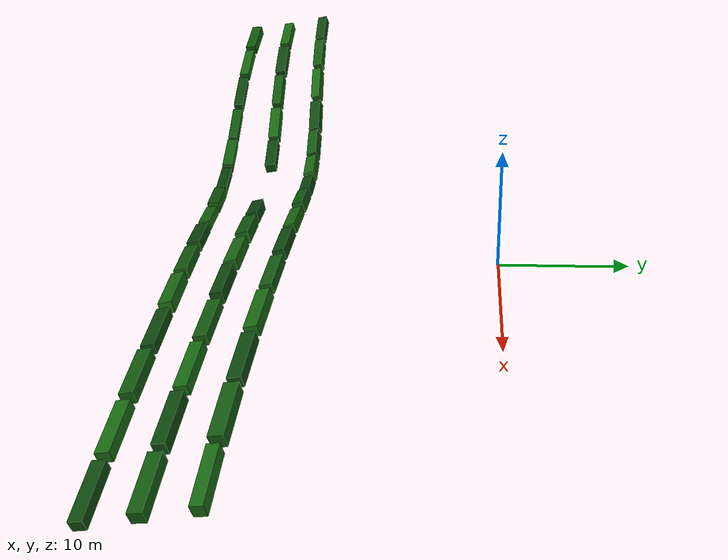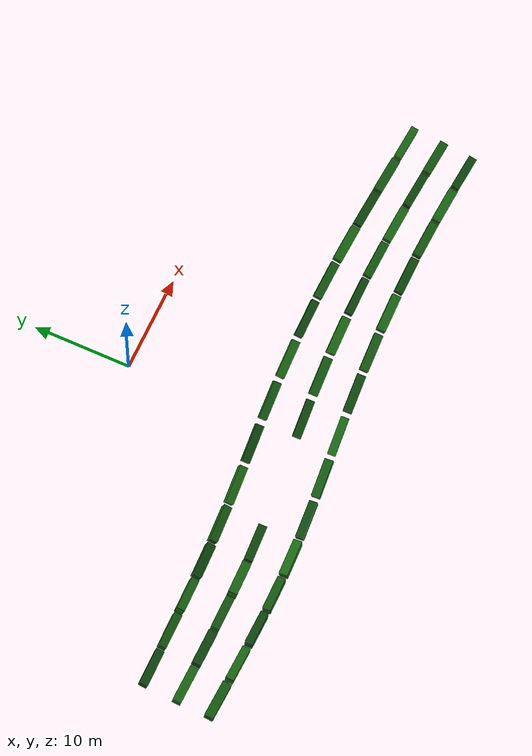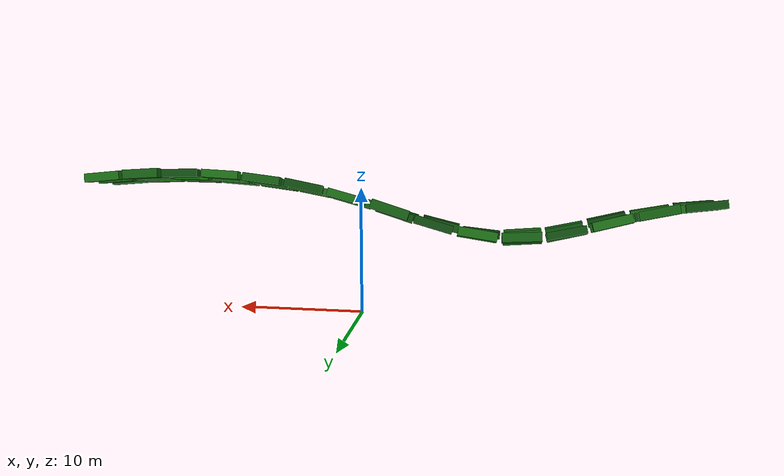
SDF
<sdf version="1.6">
 <world name="mountain_tea_garden_80m">
  <model name="tea_row_01">
   <static>true</static>
   <link name="bush_00">
    <pose>-29 -22.7745 5.35266 0.0998876 0.112143 -0.0311501</pose>
    <collision name="collision">
     <geometry><box><size>3.75 0.892285 0.839958</size></box></geometry>
     <laser_retro>55</laser_retro>
     <surface><friction><ode><mu>1.15</mu><mu2>1.15</mu2></ode></friction></surface>
    </collision>
    <visual name="visual">
     <geometry><box><size>3.75 0.892285 0.839958</size></box></geometry>
     <material>
      <ambient>0.075 0.36 0.065 1</ambient>
      <diffuse>0.075 0.36 0.065 1</diffuse>
      <specular>0.05 0.05 0.05 1</specular>
     </material>
    </visual>
   </link>
   <link name="bush_01">
    <pose>-24.85 -22.8608 4.67236 0.0571815 0.191919 -0.0099789</pose>
    <collision name="collision">
     <geometry><box><size>3.75 0.796132 0.753947</size></box></geometry>
     <laser_retro>55</laser_retro>
     <surface><friction><ode><mu>1.15</mu><mu2>1.15</mu2></ode></friction></surface>
    </collision>
    <visual name="visual">
     <geometry><box><size>3.75 0.796132 0.753947</size></box></geometry>
     <material>
      <ambient>0.1 0.42 0.075 1</ambient>
      <diffuse>0.1 0.42 0.075 1</diffuse>
      <specular>0.05 0.05 0.05 1</specular>
     </material>
    </visual>
   </link>
   <link name="bush_02">
    <pose>-20.7 -22.8555 3.7644 0.00466127 0.243966 0.0124866</pose>
    <collision name="collision">
     <geometry><box><size>3.75 0.777143 0.81683</size></box></geometry>
     <laser_retro>55</laser_retro>
     <surface><friction><ode><mu>1.15</mu><mu2>1.15</mu2></ode></friction></surface>
    </collision>
    <visual name="visual">
     <geometry><box><size>3.75 0.777143 0.81683</size></box></geometry>
     <material>
      <ambient>0.055 0.29 0.055 1</ambient>
      <diffuse>0.055 0.29 0.055 1</diffuse>
      <specular>0.05 0.05 0.05 1</specular>
     </material>
    </visual>
   </link>
   <link name="bush_03">
    <pose>-16.55 -22.7594 2.7265 -0.0450919 0.214428 0.0333328</pose>
    <collision name="collision">
     <geometry><box><size>3.75 0.809624 0.754473</size></box></geometry>
     <laser_retro>55</laser_retro>
     <surface><friction><ode><mu>1.15</mu><mu2>1.15</mu2></ode></friction></surface>
    </collision>
    <visual name="visual">
     <geometry><box><size>3.75 0.809624 0.754473</size></box></geometry>
     <material>
      <ambient>0.075 0.36 0.065 1</ambient>
      <diffuse>0.075 0.36 0.065 1</diffuse>
      <specular>0.05 0.05 0.05 1</specular>
     </material>
    </visual>
   </link>
   <link name="bush_04">
    <pose>-12.4 -22.5847 2.11446 -0.0687549 0.0786142 0.0498662</pose>
    <collision name="collision">
     <geometry><box><size>3.75 0.85426 0.826937</size></box></geometry>
     <laser_retro>55</laser_retro>
     <surface><friction><ode><mu>1.15</mu><mu2>1.15</mu2></ode></friction></surface>
    </collision>
    <visual name="visual">
     <geometry><box><size>3.75 0.85426 0.826937</size></box></geometry>
     <material>
      <ambient>0.1 0.42 0.075 1</ambient>
      <diffuse>0.1 0.42 0.075 1</diffuse>
      <specular>0.05 0.05 0.05 1</specular>
     </material>
    </visual>
   </link>
   <link name="bush_05">
    <pose>-8.25 -22.3541 2.12251 -0.0481005 -0.109021 0.0599689</pose>
    <collision name="collision">
     <geometry><box><size>3.75 0.811713 0.714429</size></box></geometry>
     <laser_retro>55</laser_retro>
     <surface><friction><ode><mu>1.15</mu><mu2>1.15</mu2></ode></friction></surface>
    </collision>
    <visual name="visual">
     <geometry><box><size>3.75 0.811713 0.714429</size></box></geometry>
     <material>
      <ambient>0.055 0.29 0.055 1</ambient>
      <diffuse>0.055 0.29 0.055 1</diffuse>
      <specular>0.05 0.05 0.05 1</specular>
     </material>
    </visual>
   </link>
   <link name="bush_06">
    <pose>-4.1 -22.0971 2.97162 0.0134282 -0.24275 0.0623588</pose>
    <collision name="collision">
     <geometry><box><size>3.75 0.858335 0.864843</size></box></geometry>
     <laser_retro>55</laser_retro>
     <surface><friction><ode><mu>1.15</mu><mu2>1.15</mu2></ode></friction></surface>
    </collision>
    <visual name="visual">
     <geometry><box><size>3.75 0.858335 0.864843</size></box></geometry>
     <material>
      <ambient>0.075 0.36 0.065 1</ambient>
      <diffuse>0.075 0.36 0.065 1</diffuse>
      <specular>0.05 0.05 0.05 1</specular>
     </material>
    </visual>
   </link>
   <link name="bush_07">
    <pose>0.05 -21.847 4.03932 0.0907372 -0.277757 0.0567342</pose>
    <collision name="collision">
     <geometry><box><size>3.75 0.803899 0.716737</size></box></geometry>
     <laser_retro>55</laser_retro>
     <surface><friction><ode><mu>1.15</mu><mu2>1.15</mu2></ode></friction></surface>
    </collision>
    <visual name="visual">
     <geometry><box><size>3.75 0.803899 0.716737</size></box></geometry>
     <material>
      <ambient>0.1 0.42 0.075 1</ambient>
      <diffuse>0.1 0.42 0.075 1</diffuse>
      <specular>0.05 0.05 0.05 1</specular>
     </material>
    </visual>
   </link>
   <link name="bush_08">
    <pose>4.2 -21.6359 5.20035 0.156833 -0.242595 0.0438062</pose>
    <collision name="collision">
     <geometry><box><size>3.75 0.875835 0.791925</size></box></geometry>
     <laser_retro>55</laser_retro>
     <surface><friction><ode><mu>1.15</mu><mu2>1.15</mu2></ode></friction></surface>
    </collision>
    <visual name="visual">
     <geometry><box><size>3.75 0.875835 0.791925</size></box></geometry>
     <material>
      <ambient>0.055 0.29 0.055 1</ambient>
      <diffuse>0.055 0.29 0.055 1</diffuse>
      <specular>0.05 0.05 0.05 1</specular>
     </material>
    </visual>
   </link>
   <link name="bush_09">
    <pose>8.35 -21.491 6.08629 0.200133 -0.182117 0.0252212</pose>
    <collision name="collision">
     <geometry><box><size>3.75 0.874606 0.766644</size></box></geometry>
     <laser_retro>55</laser_retro>
     <surface><friction><ode><mu>1.15</mu><mu2>1.15</mu2></ode></friction></surface>
    </collision>
    <visual name="visual">
     <geometry><box><size>3.75 0.874606 0.766644</size></box></geometry>
     <material>
      <ambient>0.075 0.36 0.065 1</ambient>
      <diffuse>0.075 0.36 0.065 1</diffuse>
      <specular>0.05 0.05 0.05 1</specular>
     </material>
    </visual>
   </link>
   <link name="bush_10">
    <pose>12.5 -21.431 6.74696 0.222287 -0.120367 0.0033692</pose>
    <collision name="collision">
     <geometry><box><size>3.75 0.887658 0.824218</size></box></geometry>
     <laser_retro>55</laser_retro>
     <surface><friction><ode><mu>1.15</mu><mu2>1.15</mu2></ode></friction></surface>
    </collision>
    <visual name="visual">
     <geometry><box><size>3.75 0.887658 0.824218</size></box></geometry>
     <material>
      <ambient>0.1 0.42 0.075 1</ambient>
      <diffuse>0.1 0.42 0.075 1</diffuse>
      <specular>0.05 0.05 0.05 1</specular>
     </material>
    </visual>
   </link>
   <link name="bush_11">
    <pose>16.65 -21.4637 7.06535 0.228687 -0.0604508 -0.0189199</pose>
    <collision name="collision">
     <geometry><box><size>3.75 0.844396 0.708908</size></box></geometry>
     <laser_retro>55</laser_retro>
     <surface><friction><ode><mu>1.15</mu><mu2>1.15</mu2></ode></friction></surface>
    </collision>
    <visual name="visual">
     <geometry><box><size>3.75 0.844396 0.708908</size></box></geometry>
     <material>
      <ambient>0.055 0.29 0.055 1</ambient>
      <diffuse>0.055 0.29 0.055 1</diffuse>
      <specular>0.05 0.05 0.05 1</specular>
     </material>
    </visual>
   </link>
   <link name="bush_12">
    <pose>20.8 -21.5847 7.25009 0.224577 -0.0016592 -0.0387565</pose>
    <collision name="collision">
     <geometry><box><size>3.75 0.856695 0.821859</size></box></geometry>
     <laser_retro>55</laser_retro>
     <surface><friction><ode><mu>1.15</mu><mu2>1.15</mu2></ode></friction></surface>
    </collision>
    <visual name="visual">
     <geometry><box><size>3.75 0.856695 0.821859</size></box></geometry>
     <material>
      <ambient>0.075 0.36 0.065 1</ambient>
      <diffuse>0.075 0.36 0.065 1</diffuse>
      <specular>0.05 0.05 0.05 1</specular>
     </material>
    </visual>
   </link>
   <link name="bush_13">
    <pose>24.95 -21.7786 7.10898 0.215438 0.0523958 -0.0535833</pose>
    <collision name="collision">
     <geometry><box><size>3.75 0.867778 0.755871</size></box></geometry>
     <laser_retro>55</laser_retro>
     <surface><friction><ode><mu>1.15</mu><mu2>1.15</mu2></ode></friction></surface>
    </collision>
    <visual name="visual">
     <geometry><box><size>3.75 0.867778 0.755871</size></box></geometry>
     <material>
      <ambient>0.1 0.42 0.075 1</ambient>
      <diffuse>0.1 0.42 0.075 1</diffuse>
      <specular>0.05 0.05 0.05 1</specular>
     </material>
    </visual>
   </link>
   <link name="bush_14">
    <pose>29.1 -22.0203 6.7879 0.20699 0.09578 -0.0615065</pose>
    <collision name="collision">
     <geometry><box><size>3.75 0.815724 0.740358</size></box></geometry>
     <laser_retro>55</laser_retro>
     <surface><friction><ode><mu>1.15</mu><mu2>1.15</mu2></ode></friction></surface>
    </collision>
    <visual name="visual">
     <geometry><box><size>3.75 0.815724 0.740358</size></box></geometry>
     <material>
      <ambient>0.055 0.29 0.055 1</ambient>
      <diffuse>0.055 0.29 0.055 1</diffuse>
      <specular>0.05 0.05 0.05 1</specular>
     </material>
    </visual>
   </link>
  </model>
  <model name="tea_row_02">
   <static>true</static>
   <link name="bush_00">
    <pose>-29 -19.517 5.76072 0.166529 0.131564 -0.0056859</pose>
    <collision name="collision">
     <geometry><box><size>3.75 0.844071 0.77999</size></box></geometry>
     <laser_retro>55</laser_retro>
     <surface><friction><ode><mu>1.15</mu><mu2>1.15</mu2></ode></friction></surface>
    </collision>
    <visual name="visual">
     <geometry><box><size>3.75 0.844071 0.77999</size></box></geometry>
     <material>
      <ambient>0.1 0.42 0.075 1</ambient>
      <diffuse>0.1 0.42 0.075 1</diffuse>
      <specular>0.05 0.05 0.05 1</specular>
     </material>
    </visual>
   </link>
   <link name="bush_01">
    <pose>-24.85 -19.4939 5.05984 0.152144 0.218358 0.0166937</pose>
    <collision name="collision">
     <geometry><box><size>3.75 0.892737 0.848082</size></box></geometry>
     <laser_retro>55</laser_retro>
     <surface><friction><ode><mu>1.15</mu><mu2>1.15</mu2></ode></friction></surface>
    </collision>
    <visual name="visual">
     <geometry><box><size>3.75 0.892737 0.848082</size></box></geometry>
     <material>
      <ambient>0.055 0.29 0.055 1</ambient>
      <diffuse>0.055 0.29 0.055 1</diffuse>
      <specular>0.05 0.05 0.05 1</specular>
     </material>
    </visual>
   </link>
   <link name="bush_02">
    <pose>-20.7 -19.3814 4.00924 0.142589 0.272644 0.0369091</pose>
    <collision name="collision">
     <geometry><box><size>3.75 0.821232 0.87619</size></box></geometry>
     <laser_retro>55</laser_retro>
     <surface><friction><ode><mu>1.15</mu><mu2>1.15</mu2></ode></friction></surface>
    </collision>
    <visual name="visual">
     <geometry><box><size>3.75 0.821232 0.87619</size></box></geometry>
     <material>
      <ambient>0.075 0.36 0.065 1</ambient>
      <diffuse>0.075 0.36 0.065 1</diffuse>
      <specular>0.05 0.05 0.05 1</specular>
     </material>
    </visual>
   </link>
   <link name="bush_03">
    <pose>-16.55 -19.1941 2.8697 0.139592 0.230904 0.0523518</pose>
    <collision name="collision">
     <geometry><box><size>3.75 0.890309 0.825091</size></box></geometry>
     <laser_retro>55</laser_retro>
     <surface><friction><ode><mu>1.15</mu><mu2>1.15</mu2></ode></friction></surface>
    </collision>
    <visual name="visual">
     <geometry><box><size>3.75 0.890309 0.825091</size></box></geometry>
     <material>
      <ambient>0.1 0.42 0.075 1</ambient>
      <diffuse>0.1 0.42 0.075 1</diffuse>
      <specular>0.05 0.05 0.05 1</specular>
     </material>
    </visual>
   </link>
   <link name="bush_04">
    <pose>-12.4 -18.9559 2.18218 0.144236 0.0670802 0.0610474</pose>
    <collision name="collision">
     <geometry><box><size>3.75 0.864545 0.777394</size></box></geometry>
     <laser_retro>55</laser_retro>
     <surface><friction><ode><mu>1.15</mu><mu2>1.15</mu2></ode></friction></surface>
    </collision>
    <visual name="visual">
     <geometry><box><size>3.75 0.864545 0.777394</size></box></geometry>
     <material>
      <ambient>0.055 0.29 0.055 1</ambient>
      <diffuse>0.055 0.29 0.055 1</diffuse>
      <specular>0.05 0.05 0.05 1</specular>
     </material>
    </visual>
   </link>
   <link name="bush_07">
    <pose>0.05 -18.2523 4.67501 0.200604 -0.312663 0.0406192</pose>
    <collision name="collision">
     <geometry><box><size>3.75 0.825149 0.859023</size></box></geometry>
     <laser_retro>55</laser_retro>
     <surface><friction><ode><mu>1.15</mu><mu2>1.15</mu2></ode></friction></surface>
    </collision>
    <visual name="visual">
     <geometry><box><size>3.75 0.825149 0.859023</size></box></geometry>
     <material>
      <ambient>0.055 0.29 0.055 1</ambient>
      <diffuse>0.055 0.29 0.055 1</diffuse>
      <specular>0.05 0.05 0.05 1</specular>
     </material>
    </visual>
   </link>
   <link name="bush_08">
    <pose>4.2 -18.1226 5.9424 0.222367 -0.264168 0.021205</pose>
    <collision name="collision">
     <geometry><box><size>3.75 0.879029 0.89364</size></box></geometry>
     <laser_retro>55</laser_retro>
     <surface><friction><ode><mu>1.15</mu><mu2>1.15</mu2></ode></friction></surface>
    </collision>
    <visual name="visual">
     <geometry><box><size>3.75 0.879029 0.89364</size></box></geometry>
     <material>
      <ambient>0.075 0.36 0.065 1</ambient>
      <diffuse>0.075 0.36 0.065 1</diffuse>
      <specular>0.05 0.05 0.05 1</specular>
     </material>
    </visual>
   </link>
   <link name="bush_09">
    <pose>8.35 -18.0801 6.84735 0.237251 -0.190544 -0.000957289</pose>
    <collision name="collision">
     <geometry><box><size>3.75 0.891353 0.777394</size></box></geometry>
     <laser_retro>55</laser_retro>
     <surface><friction><ode><mu>1.15</mu><mu2>1.15</mu2></ode></friction></surface>
    </collision>
    <visual name="visual">
     <geometry><box><size>3.75 0.891353 0.777394</size></box></geometry>
     <material>
      <ambient>0.1 0.42 0.075 1</ambient>
      <diffuse>0.1 0.42 0.075 1</diffuse>
      <specular>0.05 0.05 0.05 1</specular>
     </material>
    </visual>
   </link>
   <link name="bush_10">
    <pose>12.5 -18.1303 7.53505 0.241708 -0.118024 -0.0229954</pose>
    <collision name="collision">
     <geometry><box><size>3.75 0.776358 0.865297</size></box></geometry>
     <laser_retro>55</laser_retro>
     <surface><friction><ode><mu>1.15</mu><mu2>1.15</mu2></ode></friction></surface>
    </collision>
    <visual name="visual">
     <geometry><box><size>3.75 0.776358 0.865297</size></box></geometry>
     <material>
      <ambient>0.055 0.29 0.055 1</ambient>
      <diffuse>0.055 0.29 0.055 1</diffuse>
      <specular>0.05 0.05 0.05 1</specular>
     </material>
    </visual>
   </link>
   <link name="bush_11">
    <pose>16.65 -18.2669 7.81369 0.234671 -0.0510924 -0.042054</pose>
    <collision name="collision">
     <geometry><box><size>3.75 0.827249 0.722065</size></box></geometry>
     <laser_retro>55</laser_retro>
     <surface><friction><ode><mu>1.15</mu><mu2>1.15</mu2></ode></friction></surface>
    </collision>
    <visual name="visual">
     <geometry><box><size>3.75 0.827249 0.722065</size></box></geometry>
     <material>
      <ambient>0.075 0.36 0.065 1</ambient>
      <diffuse>0.075 0.36 0.065 1</diffuse>
      <specular>0.05 0.05 0.05 1</specular>
     </material>
    </visual>
   </link>
   <link name="bush_12">
    <pose>20.8 -18.4721 7.89931 0.218694 0.0101445 -0.0556799</pose>
    <collision name="collision">
     <geometry><box><size>3.75 0.842781 0.727817</size></box></geometry>
     <laser_retro>55</laser_retro>
     <surface><friction><ode><mu>1.15</mu><mu2>1.15</mu2></ode></friction></surface>
    </collision>
    <visual name="visual">
     <geometry><box><size>3.75 0.842781 0.727817</size></box></geometry>
     <material>
      <ambient>0.1 0.42 0.075 1</ambient>
      <diffuse>0.1 0.42 0.075 1</diffuse>
      <specular>0.05 0.05 0.05 1</specular>
     </material>
    </visual>
   </link>
   <link name="bush_13">
    <pose>24.95 -18.7195 7.80326 0.19954 0.062319 -0.0621361</pose>
    <collision name="collision">
     <geometry><box><size>3.75 0.797475 0.845184</size></box></geometry>
     <laser_retro>55</laser_retro>
     <surface><friction><ode><mu>1.15</mu><mu2>1.15</mu2></ode></friction></surface>
    </collision>
    <visual name="visual">
     <geometry><box><size>3.75 0.797475 0.845184</size></box></geometry>
     <material>
      <ambient>0.055 0.29 0.055 1</ambient>
      <diffuse>0.055 0.29 0.055 1</diffuse>
      <specular>0.05 0.05 0.05 1</specular>
     </material>
    </visual>
   </link>
   <link name="bush_14">
    <pose>29.1 -18.9773 7.44581 0.183946 0.100671 -0.0606059</pose>
    <collision name="collision">
     <geometry><box><size>3.75 0.851809 0.820733</size></box></geometry>
     <laser_retro>55</laser_retro>
     <surface><friction><ode><mu>1.15</mu><mu2>1.15</mu2></ode></friction></surface>
    </collision>
    <visual name="visual">
     <geometry><box><size>3.75 0.851809 0.820733</size></box></geometry>
     <material>
      <ambient>0.075 0.36 0.065 1</ambient>
      <diffuse>0.075 0.36 0.065 1</diffuse>
      <specular>0.05 0.05 0.05 1</specular>
     </material>
    </visual>
   </link>
  </model>
  <model name="tea_row_03">
   <static>true</static>
   <link name="bush_00">
    <pose>-29 -16.129 6.46352 0.244318 0.130967 0.0208205</pose>
    <collision name="collision">
     <geometry><box><size>3.75 0.82345 0.776547</size></box></geometry>
     <laser_retro>55</laser_retro>
     <surface><friction><ode><mu>1.15</mu><mu2>1.15</mu2></ode></friction></surface>
    </collision>
    <visual name="visual">
     <geometry><box><size>3.75 0.82345 0.776547</size></box></geometry>
     <material>
      <ambient>0.055 0.29 0.055 1</ambient>
      <diffuse>0.055 0.29 0.055 1</diffuse>
      <specular>0.05 0.05 0.05 1</specular>
     </material>
    </visual>
   </link>
   <link name="bush_01">
    <pose>-24.85 -16.0007 5.78723 0.264086 0.211165 0.0403083</pose>
    <collision name="collision">
     <geometry><box><size>3.75 0.786979 0.862926</size></box></geometry>
     <laser_retro>55</laser_retro>
     <surface><friction><ode><mu>1.15</mu><mu2>1.15</mu2></ode></friction></surface>
    </collision>
    <visual name="visual">
     <geometry><box><size>3.75 0.786979 0.862926</size></box></geometry>
     <material>
      <ambient>0.075 0.36 0.065 1</ambient>
      <diffuse>0.075 0.36 0.065 1</diffuse>
      <specular>0.05 0.05 0.05 1</specular>
     </material>
    </visual>
   </link>
   <link name="bush_02">
    <pose>-20.7 -15.8015 4.76141 0.299852 0.256128 0.0545871</pose>
    <collision name="collision">
     <geometry><box><size>3.75 0.798951 0.838892</size></box></geometry>
     <laser_retro>55</laser_retro>
     <surface><friction><ode><mu>1.15</mu><mu2>1.15</mu2></ode></friction></surface>
    </collision>
    <visual name="visual">
     <geometry><box><size>3.75 0.798951 0.838892</size></box></geometry>
     <material>
      <ambient>0.1 0.42 0.075 1</ambient>
      <diffuse>0.1 0.42 0.075 1</diffuse>
      <specular>0.05 0.05 0.05 1</specular>
     </material>
    </visual>
   </link>
   <link name="bush_03">
    <pose>-16.55 -15.557 3.6939 0.340266 0.206 0.0618348</pose>
    <collision name="collision">
     <geometry><box><size>3.75 0.890923 0.746322</size></box></geometry>
     <laser_retro>55</laser_retro>
     <surface><friction><ode><mu>1.15</mu><mu2>1.15</mu2></ode></friction></surface>
    </collision>
    <visual name="visual">
     <geometry><box><size>3.75 0.890923 0.746322</size></box></geometry>
     <material>
      <ambient>0.055 0.29 0.055 1</ambient>
      <diffuse>0.055 0.29 0.055 1</diffuse>
      <specular>0.05 0.05 0.05 1</specular>
     </material>
    </visual>
   </link>
   <link name="bush_04">
    <pose>-12.4 -15.2987 3.21176 0.366528 0.0442407 0.0611342</pose>
    <collision name="collision">
     <geometry><box><size>3.75 0.812689 0.895469</size></box></geometry>
     <laser_retro>55</laser_retro>
     <surface><friction><ode><mu>1.15</mu><mu2>1.15</mu2></ode></friction></surface>
    </collision>
    <visual name="visual">
     <geometry><box><size>3.75 0.812689 0.895469</size></box></geometry>
     <material>
      <ambient>0.075 0.36 0.065 1</ambient>
      <diffuse>0.075 0.36 0.065 1</diffuse>
      <specular>0.05 0.05 0.05 1</specular>
     </material>
    </visual>
   </link>
   <link name="bush_05">
    <pose>-8.25 -15.0599 3.4379 0.367517 -0.153743 0.0525735</pose>
    <collision name="collision">
     <geometry><box><size>3.75 0.802153 0.872459</size></box></geometry>
     <laser_retro>55</laser_retro>
     <surface><friction><ode><mu>1.15</mu><mu2>1.15</mu2></ode></friction></surface>
    </collision>
    <visual name="visual">
     <geometry><box><size>3.75 0.802153 0.872459</size></box></geometry>
     <material>
      <ambient>0.1 0.42 0.075 1</ambient>
      <diffuse>0.1 0.42 0.075 1</diffuse>
      <specular>0.05 0.05 0.05 1</specular>
     </material>
    </visual>
   </link>
   <link name="bush_06">
    <pose>-4.1 -14.8713 4.31517 0.348797 -0.278729 0.0372376</pose>
    <collision name="collision">
     <geometry><box><size>3.75 0.806359 0.722307</size></box></geometry>
     <laser_retro>55</laser_retro>
     <surface><friction><ode><mu>1.15</mu><mu2>1.15</mu2></ode></friction></surface>
    </collision>
    <visual name="visual">
     <geometry><box><size>3.75 0.806359 0.722307</size></box></geometry>
     <material>
      <ambient>0.055 0.29 0.055 1</ambient>
      <diffuse>0.055 0.29 0.055 1</diffuse>
      <specular>0.05 0.05 0.05 1</specular>
     </material>
    </visual>
   </link>
   <link name="bush_07">
    <pose>0.05 -14.7573 5.66152 0.325839 -0.300766 0.0170868</pose>
    <collision name="collision">
     <geometry><box><size>3.75 0.774045 0.870079</size></box></geometry>
     <laser_retro>55</laser_retro>
     <surface><friction><ode><mu>1.15</mu><mu2>1.15</mu2></ode></friction></surface>
    </collision>
    <visual name="visual">
     <geometry><box><size>3.75 0.774045 0.870079</size></box></geometry>
     <material>
      <ambient>0.075 0.36 0.065 1</ambient>
      <diffuse>0.075 0.36 0.065 1</diffuse>
      <specular>0.05 0.05 0.05 1</specular>
     </material>
    </visual>
   </link>
   <link name="bush_08">
    <pose>4.2 -14.7326 6.77727 0.309515 -0.253931 -0.00527917</pose>
    <collision name="collision">
     <geometry><box><size>3.75 0.825867 0.703907</size></box></geometry>
     <laser_retro>55</laser_retro>
     <surface><friction><ode><mu>1.15</mu><mu2>1.15</mu2></ode></friction></surface>
    </collision>
    <visual name="visual">
     <geometry><box><size>3.75 0.825867 0.703907</size></box></geometry>
     <material>
      <ambient>0.1 0.42 0.075 1</ambient>
      <diffuse>0.1 0.42 0.075 1</diffuse>
      <specular>0.05 0.05 0.05 1</specular>
     </material>
    </visual>
   </link>
   <link name="bush_09">
    <pose>8.35 -14.8002 7.72465 0.29867 -0.180551 -0.0269603</pose>
    <collision name="collision">
     <geometry><box><size>3.75 0.773163 0.75791</size></box></geometry>
     <laser_retro>55</laser_retro>
     <surface><friction><ode><mu>1.15</mu><mu2>1.15</mu2></ode></friction></surface>
    </collision>
    <visual name="visual">
     <geometry><box><size>3.75 0.773163 0.75791</size></box></geometry>
     <material>
      <ambient>0.055 0.29 0.055 1</ambient>
      <diffuse>0.055 0.29 0.055 1</diffuse>
      <specular>0.05 0.05 0.05 1</specular>
     </material>
    </visual>
   </link>
   <link name="bush_10">
    <pose>12.5 -14.9516 8.30246 0.285135 -0.104613 -0.0451499</pose>
    <collision name="collision">
     <geometry><box><size>3.75 0.815333 0.722778</size></box></geometry>
     <laser_retro>55</laser_retro>
     <surface><friction><ode><mu>1.15</mu><mu2>1.15</mu2></ode></friction></surface>
    </collision>
    <visual name="visual">
     <geometry><box><size>3.75 0.815333 0.722778</size></box></geometry>
     <material>
      <ambient>0.075 0.36 0.065 1</ambient>
      <diffuse>0.075 0.36 0.065 1</diffuse>
      <specular>0.05 0.05 0.05 1</specular>
     </material>
    </visual>
   </link>
   <link name="bush_11">
    <pose>16.65 -15.1671 8.60993 0.262898 -0.0336493 -0.0575107</pose>
    <collision name="collision">
     <geometry><box><size>3.75 0.883475 0.766614</size></box></geometry>
     <laser_retro>55</laser_retro>
     <surface><friction><ode><mu>1.15</mu><mu2>1.15</mu2></ode></friction></surface>
    </collision>
    <visual name="visual">
     <geometry><box><size>3.75 0.883475 0.766614</size></box></geometry>
     <material>
      <ambient>0.1 0.42 0.075 1</ambient>
      <diffuse>0.1 0.42 0.075 1</diffuse>
      <specular>0.05 0.05 0.05 1</specular>
     </material>
    </visual>
   </link>
   <link name="bush_12">
    <pose>20.8 -15.4191 8.61538 0.232589 0.0288673 -0.0624697</pose>
    <collision name="collision">
     <geometry><box><size>3.75 0.863159 0.764966</size></box></geometry>
     <laser_retro>55</laser_retro>
     <surface><friction><ode><mu>1.15</mu><mu2>1.15</mu2></ode></friction></surface>
    </collision>
    <visual name="visual">
     <geometry><box><size>3.75 0.863159 0.764966</size></box></geometry>
     <material>
      <ambient>0.055 0.29 0.055 1</ambient>
      <diffuse>0.055 0.29 0.055 1</diffuse>
      <specular>0.05 0.05 0.05 1</specular>
     </material>
    </visual>
   </link>
   <link name="bush_13">
    <pose>24.95 -15.6751 8.44657 0.200182 0.0784225 -0.0594002</pose>
    <collision name="collision">
     <geometry><box><size>3.75 0.889381 0.884618</size></box></geometry>
     <laser_retro>55</laser_retro>
     <surface><friction><ode><mu>1.15</mu><mu2>1.15</mu2></ode></friction></surface>
    </collision>
    <visual name="visual">
     <geometry><box><size>3.75 0.889381 0.884618</size></box></geometry>
     <material>
      <ambient>0.075 0.36 0.065 1</ambient>
      <diffuse>0.075 0.36 0.065 1</diffuse>
      <specular>0.05 0.05 0.05 1</specular>
     </material>
    </visual>
   </link>
   <link name="bush_14">
    <pose>29.1 -15.9021 8.03439 0.173108 0.110836 -0.0486899</pose>
    <collision name="collision">
     <geometry><box><size>3.75 0.760873 0.862351</size></box></geometry>
     <laser_retro>55</laser_retro>
     <surface><friction><ode><mu>1.15</mu><mu2>1.15</mu2></ode></friction></surface>
    </collision>
    <visual name="visual">
     <geometry><box><size>3.75 0.760873 0.862351</size></box></geometry>
     <material>
      <ambient>0.1 0.42 0.075 1</ambient>
      <diffuse>0.1 0.42 0.075 1</diffuse>
      <specular>0.05 0.05 0.05 1</specular>
     </material>
    </visual>
   </link>
  </model>
 </world>
</sdf>
